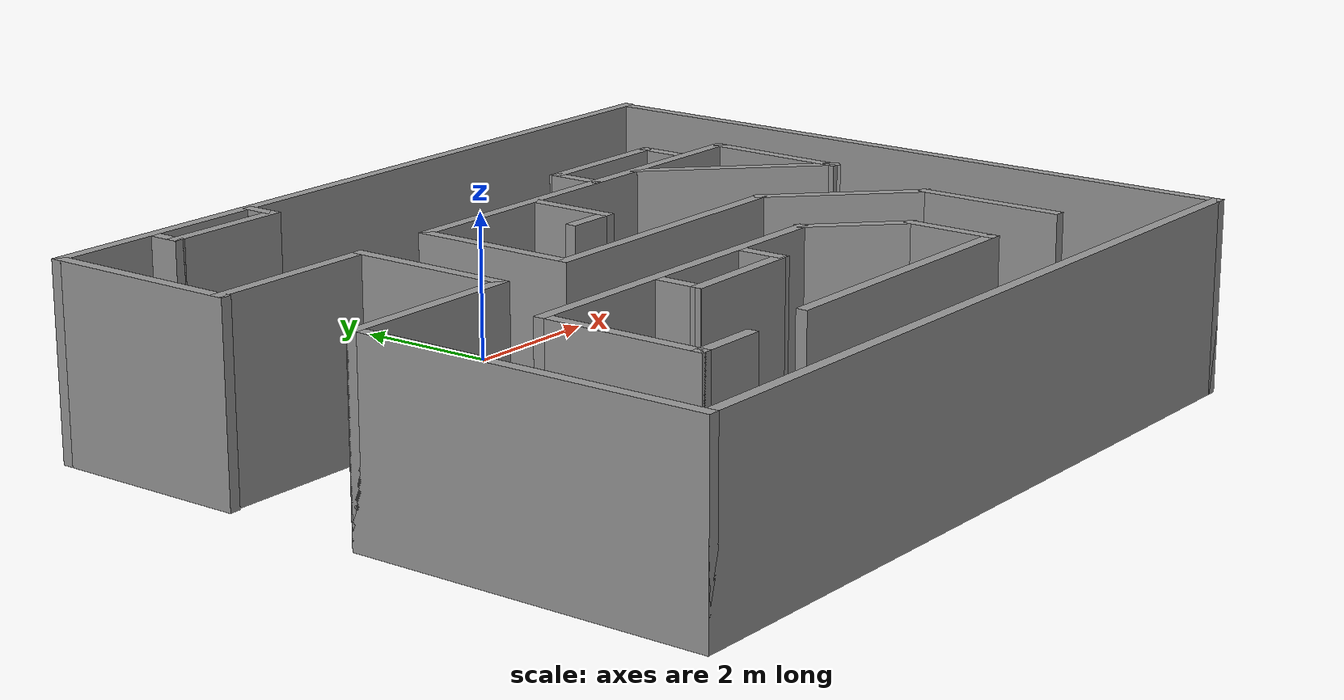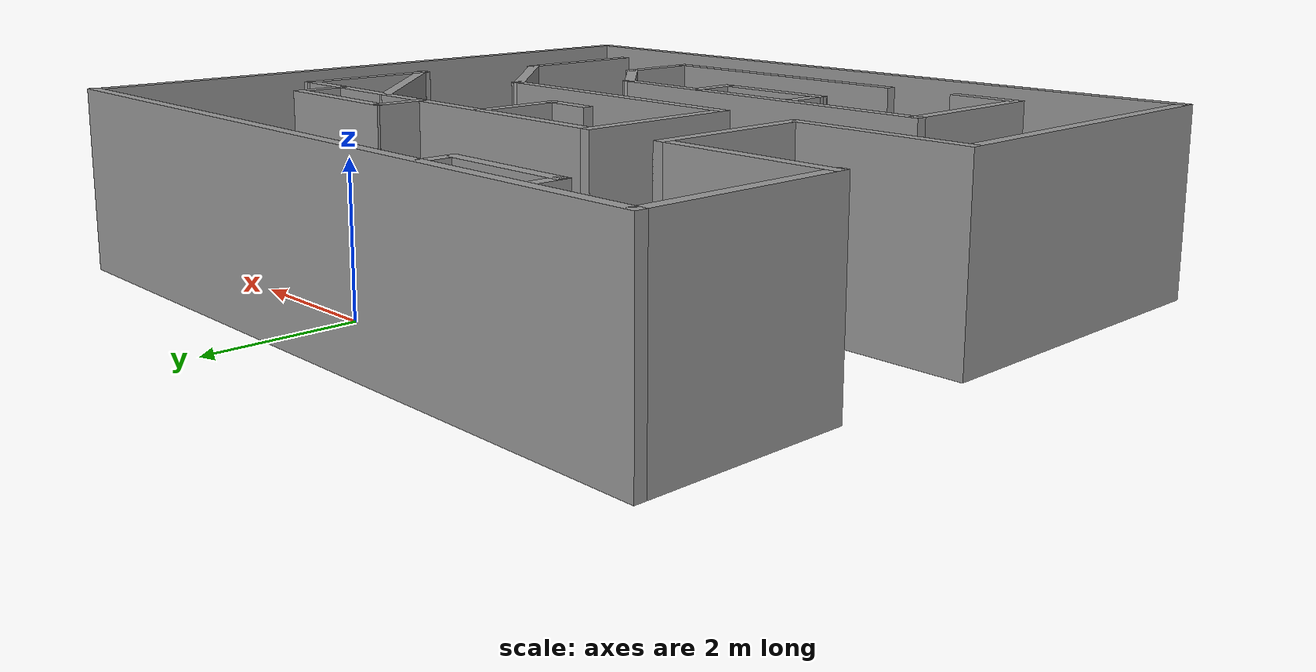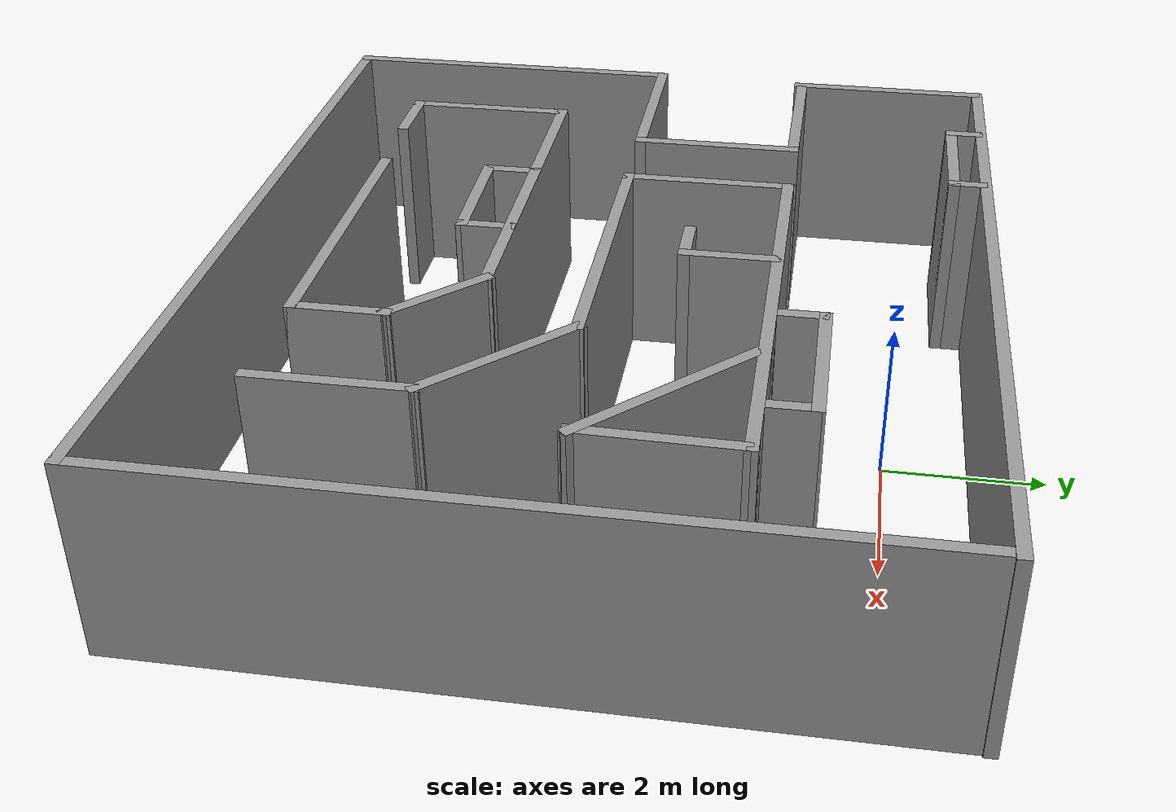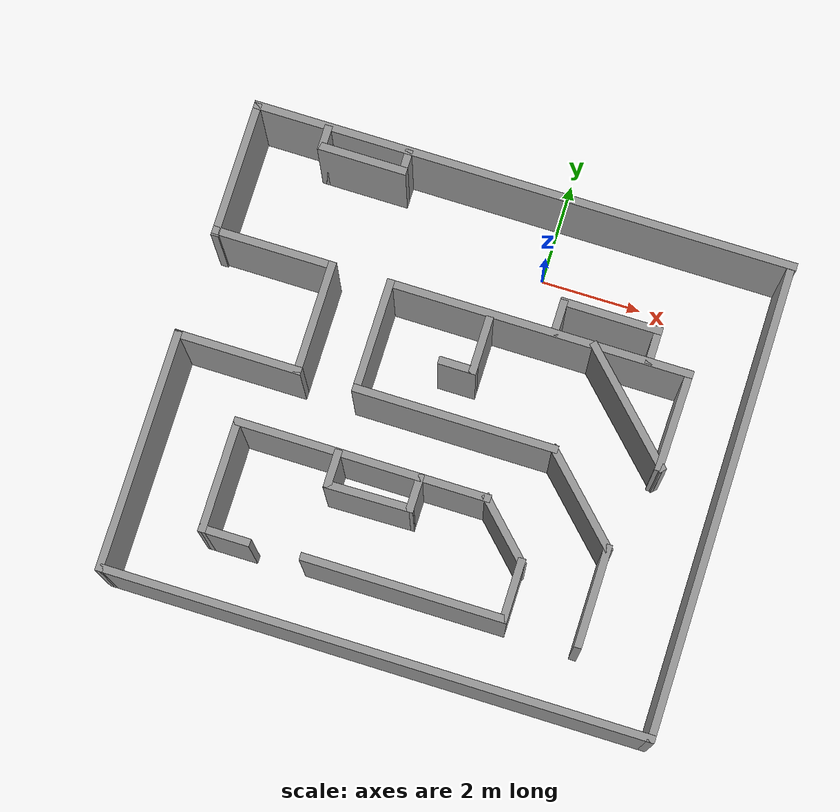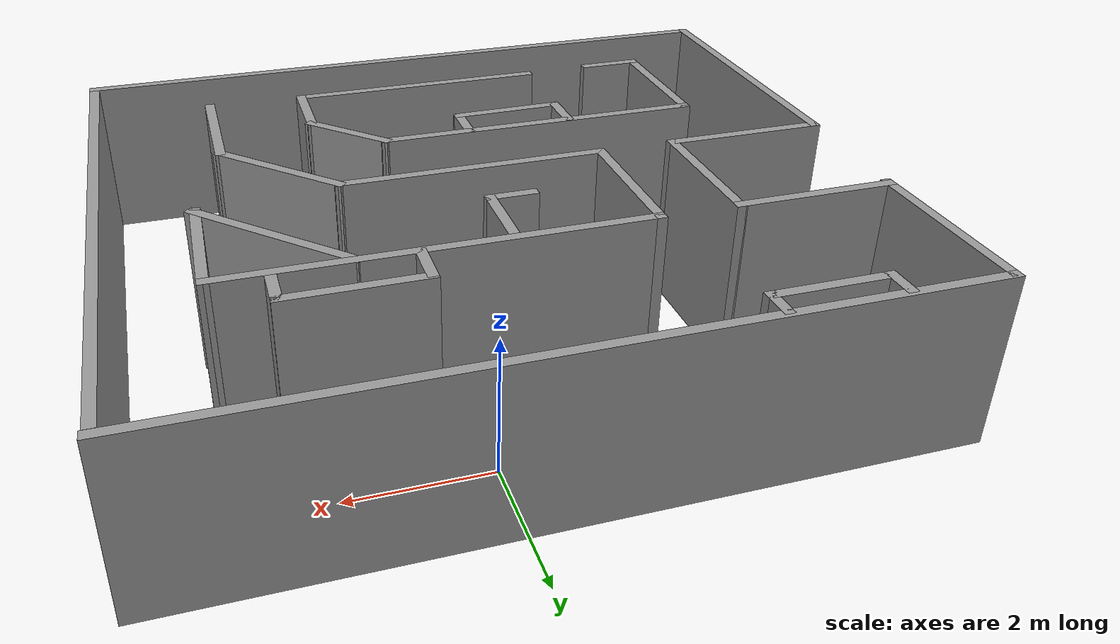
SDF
<?xml version='1.0'?>
<sdf version='1.6'>
  <model name='ex2_building'>
    <pose frame=''>-0.815142 -3.50772 0 0 -0 0</pose>
    <link name='Wall_0'>
      <collision name='Wall_0_Collision'>
        <geometry>
          <box>
            <size>6 0.15 2.5</size>
          </box>
        </geometry>
        <pose frame=''>0 0 1.25 0 -0 0</pose>
      </collision>
      <visual name='Wall_0_Visual'>
        <pose frame=''>0 0 1.25 0 -0 0</pose>
        <geometry>
          <box>
            <size>6 0.15 2.5</size>
          </box>
        </geometry>
        <material>
          <script>
            <uri>file://media/materials/scripts/gazebo.material</uri>
            <name>Gazebo/Grey</name>
          </script>
          <ambient>1 1 1 1</ambient>
        </material>
        <meta>
          <layer>0</layer>
        </meta>
      </visual>
      <pose frame=''>1.11169 2.0739 0 0 -0 0</pose>
    </link>
    <link name='Wall_10'>
      <collision name='Wall_10_Collision'>
        <geometry>
          <box>
            <size>2.7022 0.15 2.5</size>
          </box>
        </geometry>
        <pose frame=''>0 0 1.25 0 -0 0</pose>
      </collision>
      <visual name='Wall_10_Visual'>
        <pose frame=''>0 0 1.25 0 -0 0</pose>
        <geometry>
          <box>
            <size>2.7022 0.15 2.5</size>
          </box>
        </geometry>
        <material>
          <script>
            <uri>file://media/materials/scripts/gazebo.material</uri>
            <name>Gazebo/Grey</name>
          </script>
          <ambient>1 1 1 1</ambient>
        </material>
        <meta>
          <layer>0</layer>
        </meta>
      </visual>
      <pose frame=''>-5.24296 3.31482 0 0 0 -1.5708</pose>
    </link>
    <link name='Wall_11'>
      <collision name='Wall_11_Collision'>
        <geometry>
          <box>
            <size>2.42964 0.15 2.5</size>
          </box>
        </geometry>
        <pose frame=''>0 0 1.25 0 -0 0</pose>
      </collision>
      <visual name='Wall_11_Visual'>
        <pose frame=''>0 0 1.25 0 -0 0</pose>
        <geometry>
          <box>
            <size>2.42964 0.15 2.5</size>
          </box>
        </geometry>
        <material>
          <script>
            <uri>file://media/materials/scripts/gazebo.material</uri>
            <name>Gazebo/Grey</name>
          </script>
          <ambient>1 1 1 1</ambient>
        </material>
        <meta>
          <layer>0</layer>
        </meta>
      </visual>
      <pose frame=''>-4.10314 2.0739 0 0 -0 0</pose>
    </link>
    <link name='Wall_12'>
      <collision name='Wall_12_Collision'>
        <geometry>
          <box>
            <size>2.25 0.15 2.5</size>
          </box>
        </geometry>
        <pose frame=''>0 0 1.25 0 -0 0</pose>
      </collision>
      <visual name='Wall_12_Visual'>
        <pose frame=''>0 0 1.25 0 -0 0</pose>
        <geometry>
          <box>
            <size>2.25 0.15 2.5</size>
          </box>
        </geometry>
        <material>
          <script>
            <uri>file://media/materials/scripts/gazebo.material</uri>
            <name>Gazebo/Grey</name>
          </script>
          <ambient>1 1 1 1</ambient>
        </material>
        <meta>
          <layer>0</layer>
        </meta>
      </visual>
      <pose frame=''>-2.96332 1.0239 0 0 0 -1.5708</pose>
    </link>
    <link name='Wall_13'>
      <collision name='Wall_13_Collision'>
        <geometry>
          <box>
            <size>2.5 0.15 2.5</size>
          </box>
        </geometry>
        <pose frame=''>0 0 1.25 0 -0 0</pose>
      </collision>
      <visual name='Wall_13_Visual'>
        <pose frame=''>0 0 1.25 0 -0 0</pose>
        <geometry>
          <box>
            <size>2.5 0.15 2.5</size>
          </box>
        </geometry>
        <material>
          <script>
            <uri>file://media/materials/scripts/gazebo.material</uri>
            <name>Gazebo/Grey</name>
          </script>
          <ambient>1 1 1 1</ambient>
        </material>
        <meta>
          <layer>0</layer>
        </meta>
      </visual>
      <pose frame=''>-4.13831 -0.026102 0 0 -0 3.14159</pose>
    </link>
    <link name='Wall_15'>
      <collision name='Wall_15_Collision'>
        <geometry>
          <box>
            <size>4.75 0.15 2.5</size>
          </box>
        </geometry>
        <pose frame=''>0 0 1.25 0 -0 0</pose>
      </collision>
      <visual name='Wall_15_Visual'>
        <pose frame=''>0 0 1.25 0 -0 0</pose>
        <geometry>
          <box>
            <size>4.75 0.15 2.5</size>
          </box>
        </geometry>
        <material>
          <script>
            <uri>file://media/materials/scripts/gazebo.material</uri>
            <name>Gazebo/Grey</name>
          </script>
          <ambient>1 1 1 1</ambient>
        </material>
        <meta>
          <layer>0</layer>
        </meta>
      </visual>
      <pose frame=''>-5.31332 -2.3261 0 0 0 -1.5708</pose>
    </link>
    <link name='Wall_16'>
      <collision name='Wall_16_Collision'>
        <geometry>
          <box>
            <size>10.75 0.15 2.5</size>
          </box>
        </geometry>
        <pose frame=''>0 0 1.25 0 -0 0</pose>
      </collision>
      <visual name='Wall_16_Visual'>
        <pose frame=''>0 0 1.25 0 -0 0</pose>
        <geometry>
          <box>
            <size>10.75 0.15 2.5</size>
          </box>
        </geometry>
        <material>
          <script>
            <uri>file://media/materials/scripts/gazebo.material</uri>
            <name>Gazebo/Grey</name>
          </script>
          <ambient>1 1 1 1</ambient>
        </material>
        <meta>
          <layer>0</layer>
        </meta>
      </visual>
      <pose frame=''>-0.013315 -4.6261 0 0 -0 0</pose>
    </link>
    <link name='Wall_17'>
      <collision name='Wall_17_Collision'>
        <geometry>
          <box>
            <size>9.25 0.15 2.5</size>
          </box>
        </geometry>
        <pose frame=''>0 0 1.25 0 -0 0</pose>
      </collision>
      <visual name='Wall_17_Visual'>
        <pose frame=''>0 0 1.25 0 -0 0</pose>
        <geometry>
          <box>
            <size>9.25 0.15 2.5</size>
          </box>
        </geometry>
        <material>
          <script>
            <uri>file://media/materials/scripts/gazebo.material</uri>
            <name>Gazebo/Grey</name>
          </script>
          <ambient>1 1 1 1</ambient>
        </material>
        <meta>
          <layer>0</layer>
        </meta>
      </visual>
      <pose frame=''>5.28669 -0.076102 0 0 -0 1.5708</pose>
    </link>
    <link name='Wall_19'>
      <collision name='Wall_19_Collision'>
        <geometry>
          <box>
            <size>2.00033 0.15 2.5</size>
          </box>
        </geometry>
        <pose frame=''>0 0 1.25 0 -0 0</pose>
      </collision>
      <visual name='Wall_19_Visual'>
        <pose frame=''>0 0 1.25 0 -0 0</pose>
        <geometry>
          <box>
            <size>2.00033 0.15 2.5</size>
          </box>
        </geometry>
        <material>
          <script>
            <uri>file://media/materials/scripts/gazebo.material</uri>
            <name>Gazebo/Grey</name>
          </script>
          <ambient>1 1 1 1</ambient>
        </material>
        <meta>
          <layer>0</layer>
        </meta>
      </visual>
      <pose frame=''>4.0191 1.1489 0 0 0 -1.58981</pose>
    </link>
    <link name='Wall_20'>
      <collision name='Wall_20_Collision'>
        <geometry>
          <box>
            <size>2.75 0.15 2.5</size>
          </box>
        </geometry>
        <pose frame=''>0 0 1.25 0 -0 0</pose>
      </collision>
      <visual name='Wall_20_Visual'>
        <pose frame=''>0 0 1.25 0 -0 0</pose>
        <geometry>
          <box>
            <size>2.75 0.15 2.5</size>
          </box>
        </geometry>
        <material>
          <script>
            <uri>file://media/materials/scripts/gazebo.material</uri>
            <name>Gazebo/Grey</name>
          </script>
          <ambient>1 1 1 1</ambient>
        </material>
        <meta>
          <layer>0</layer>
        </meta>
      </visual>
      <pose frame=''>3.11745 1.14314 0 0 -0 2.35619</pose>
    </link>
    <link name='Wall_22'>
      <collision name='Wall_22_Collision'>
        <geometry>
          <box>
            <size>2.25 0.15 2.5</size>
          </box>
        </geometry>
        <pose frame=''>0 0 1.25 0 -0 0</pose>
      </collision>
      <visual name='Wall_22_Visual'>
        <pose frame=''>0 0 1.25 0 -0 0</pose>
        <geometry>
          <box>
            <size>2.25 0.15 2.5</size>
          </box>
        </geometry>
        <material>
          <script>
            <uri>file://media/materials/scripts/gazebo.material</uri>
            <name>Gazebo/Grey</name>
          </script>
          <ambient>1 1 1 1</ambient>
        </material>
        <meta>
          <layer>0</layer>
        </meta>
      </visual>
      <pose frame=''>-3.73355 -2.32545 0 0 0 -1.5708</pose>
    </link>
    <link name='Wall_23'>
      <collision name='Wall_23_Collision'>
        <geometry>
          <box>
            <size>1 0.15 2.5</size>
          </box>
        </geometry>
        <pose frame=''>0 0 1.25 0 -0 0</pose>
      </collision>
      <visual name='Wall_23_Visual'>
        <pose frame=''>0 0 1.25 0 -0 0</pose>
        <geometry>
          <box>
            <size>1 0.15 2.5</size>
          </box>
        </geometry>
        <material>
          <script>
            <uri>file://media/materials/scripts/gazebo.material</uri>
            <name>Gazebo/Grey</name>
          </script>
          <ambient>1 1 1 1</ambient>
        </material>
        <meta>
          <layer>0</layer>
        </meta>
      </visual>
      <pose frame=''>-3.30855 -3.37545 0 0 -0 0</pose>
    </link>
    <link name='Wall_25'>
      <collision name='Wall_25_Collision'>
        <geometry>
          <box>
            <size>5 0.15 2.5</size>
          </box>
        </geometry>
        <pose frame=''>0 0 1.25 0 -0 0</pose>
      </collision>
      <visual name='Wall_25_Visual'>
        <pose frame=''>0 0 1.25 0 -0 0</pose>
        <geometry>
          <box>
            <size>5 0.15 2.5</size>
          </box>
        </geometry>
        <material>
          <script>
            <uri>file://media/materials/scripts/gazebo.material</uri>
            <name>Gazebo/Grey</name>
          </script>
          <ambient>1 1 1 1</ambient>
        </material>
        <meta>
          <layer>0</layer>
        </meta>
      </visual>
      <pose frame=''>-1.30855 -1.27544 0 0 -0 0</pose>
    </link>
    <link name='Wall_26'>
      <collision name='Wall_26_Collision'>
        <geometry>
          <box>
            <size>1.5 0.15 2.5</size>
          </box>
        </geometry>
        <pose frame=''>0 0 1.25 0 -0 0</pose>
      </collision>
      <visual name='Wall_26_Visual'>
        <pose frame=''>0 0 1.25 0 -0 0</pose>
        <geometry>
          <box>
            <size>1.5 0.15 2.5</size>
          </box>
        </geometry>
        <material>
          <script>
            <uri>file://media/materials/scripts/gazebo.material</uri>
            <name>Gazebo/Grey</name>
          </script>
          <ambient>1 1 1 1</ambient>
        </material>
        <meta>
          <layer>0</layer>
        </meta>
      </visual>
      <pose frame=''>1.59375 -1.75274 0 0 0 -0.785398</pose>
    </link>
    <link name='Wall_27'>
      <collision name='Wall_27_Collision'>
        <geometry>
          <box>
            <size>1.25 0.15 2.5</size>
          </box>
        </geometry>
        <pose frame=''>0 0 1.25 0 -0 0</pose>
      </collision>
      <visual name='Wall_27_Visual'>
        <pose frame=''>0 0 1.25 0 -0 0</pose>
        <geometry>
          <box>
            <size>1.25 0.15 2.5</size>
          </box>
        </geometry>
        <material>
          <script>
            <uri>file://media/materials/scripts/gazebo.material</uri>
            <name>Gazebo/Grey</name>
          </script>
          <ambient>1 1 1 1</ambient>
        </material>
        <meta>
          <layer>0</layer>
        </meta>
      </visual>
      <pose frame=''>2.07105 -2.78004 0 0 0 -1.5708</pose>
    </link>
    <link name='Wall_28'>
      <collision name='Wall_28_Collision'>
        <geometry>
          <box>
            <size>4 0.15 2.5</size>
          </box>
        </geometry>
        <pose frame=''>0 0 1.25 0 -0 0</pose>
      </collision>
      <visual name='Wall_28_Visual'>
        <pose frame=''>0 0 1.25 0 -0 0</pose>
        <geometry>
          <box>
            <size>4 0.15 2.5</size>
          </box>
        </geometry>
        <material>
          <script>
            <uri>file://media/materials/scripts/gazebo.material</uri>
            <name>Gazebo/Grey</name>
          </script>
          <ambient>1 1 1 1</ambient>
        </material>
        <meta>
          <layer>0</layer>
        </meta>
      </visual>
      <pose frame=''>0.146047 -3.33004 0 0 -0 3.14159</pose>
    </link>
    <link name='Wall_3'>
      <collision name='Wall_3_Collision'>
        <geometry>
          <box>
            <size>2.25 0.15 2.5</size>
          </box>
        </geometry>
        <pose frame=''>0 0 1.25 0 -0 0</pose>
      </collision>
      <visual name='Wall_3_Visual'>
        <pose frame=''>0 0 1.25 0 -0 0</pose>
        <geometry>
          <box>
            <size>2.25 0.15 2.5</size>
          </box>
        </geometry>
        <material>
          <script>
            <uri>file://media/materials/scripts/gazebo.material</uri>
            <name>Gazebo/Grey</name>
          </script>
          <ambient>1 1 1 1</ambient>
        </material>
        <meta>
          <layer>0</layer>
        </meta>
      </visual>
      <pose frame=''>-1.81332 1.0239 0 0 0 -1.5708</pose>
    </link>
    <link name='Wall_34'>
      <collision name='Wall_34_Collision'>
        <geometry>
          <box>
            <size>0.711073 0.15 2.5</size>
          </box>
        </geometry>
        <pose frame=''>0 0 1.25 0 -0 0</pose>
      </collision>
      <visual name='Wall_34_Visual'>
        <pose frame=''>0 0 1.25 0 -0 0</pose>
        <geometry>
          <box>
            <size>0.711073 0.15 2.5</size>
          </box>
        </geometry>
        <material>
          <script>
            <uri>file://media/materials/scripts/gazebo.material</uri>
            <name>Gazebo/Grey</name>
          </script>
          <ambient>1 1 1 1</ambient>
        </material>
        <meta>
          <layer>0</layer>
        </meta>
      </visual>
      <pose frame=''>1.40255 2.38225 0 0 -0 1.5708</pose>
    </link>
    <link name='Wall_35'>
      <collision name='Wall_35_Collision'>
        <geometry>
          <box>
            <size>2 0.15 2.5</size>
          </box>
        </geometry>
        <pose frame=''>0 0 1.25 0 -0 0</pose>
      </collision>
      <visual name='Wall_35_Visual'>
        <pose frame=''>0 0 1.25 0 -0 0</pose>
        <geometry>
          <box>
            <size>2 0.15 2.5</size>
          </box>
        </geometry>
        <material>
          <script>
            <uri>file://media/materials/scripts/gazebo.material</uri>
            <name>Gazebo/Grey</name>
          </script>
          <ambient>1 1 1 1</ambient>
        </material>
        <meta>
          <layer>0</layer>
        </meta>
      </visual>
      <pose frame=''>2.32755 2.69797 0 0 -0 0</pose>
    </link>
    <link name='Wall_36'>
      <collision name='Wall_36_Collision'>
        <geometry>
          <box>
            <size>0.711073 0.15 2.5</size>
          </box>
        </geometry>
        <pose frame=''>0 0 1.25 0 -0 0</pose>
      </collision>
      <visual name='Wall_36_Visual'>
        <pose frame=''>0 0 1.25 0 -0 0</pose>
        <geometry>
          <box>
            <size>0.711073 0.15 2.5</size>
          </box>
        </geometry>
        <material>
          <script>
            <uri>file://media/materials/scripts/gazebo.material</uri>
            <name>Gazebo/Grey</name>
          </script>
          <ambient>1 1 1 1</ambient>
        </material>
        <meta>
          <layer>0</layer>
        </meta>
      </visual>
      <pose frame=''>3.25255 2.38225 0 0 0 -1.5708</pose>
    </link>
    <link name='Wall_38'>
      <collision name='Wall_38_Collision'>
        <geometry>
          <box>
            <size>0.5 0.15 2.5</size>
          </box>
        </geometry>
        <pose frame=''>0 0 1.25 0 -0 0</pose>
      </collision>
      <visual name='Wall_38_Visual'>
        <pose frame=''>0 0 1.25 0 -0 0</pose>
        <geometry>
          <box>
            <size>0.5 0.15 2.5</size>
          </box>
        </geometry>
        <material>
          <script>
            <uri>file://media/materials/scripts/gazebo.material</uri>
            <name>Gazebo/Grey</name>
          </script>
          <ambient>1 1 1 1</ambient>
        </material>
        <meta>
          <layer>0</layer>
        </meta>
      </visual>
      <pose frame=''>-3.83602 4.39534 0 0 0 -1.5708</pose>
    </link>
    <link name='Wall_39'>
      <collision name='Wall_39_Collision'>
        <geometry>
          <box>
            <size>1.75 0.15 2.5</size>
          </box>
        </geometry>
        <pose frame=''>0 0 1.25 0 -0 0</pose>
      </collision>
      <visual name='Wall_39_Visual'>
        <pose frame=''>0 0 1.25 0 -0 0</pose>
        <geometry>
          <box>
            <size>1.75 0.15 2.5</size>
          </box>
        </geometry>
        <material>
          <script>
            <uri>file://media/materials/scripts/gazebo.material</uri>
            <name>Gazebo/Grey</name>
          </script>
          <ambient>1 1 1 1</ambient>
        </material>
        <meta>
          <layer>0</layer>
        </meta>
      </visual>
      <pose frame=''>-3.03601 4.22034 0 0 -0 0</pose>
    </link>
    <link name='Wall_4'>
      <collision name='Wall_4_Collision'>
        <geometry>
          <box>
            <size>4 0.15 2.5</size>
          </box>
        </geometry>
        <pose frame=''>0 0 1.25 0 -0 0</pose>
      </collision>
      <visual name='Wall_4_Visual'>
        <pose frame=''>0 0 1.25 0 -0 0</pose>
        <geometry>
          <box>
            <size>4 0.15 2.5</size>
          </box>
        </geometry>
        <material>
          <script>
            <uri>file://media/materials/scripts/gazebo.material</uri>
            <name>Gazebo/Grey</name>
          </script>
          <ambient>1 1 1 1</ambient>
        </material>
        <meta>
          <layer>0</layer>
        </meta>
      </visual>
      <pose frame=''>0.111685 -0.026102 0 0 -0 0</pose>
    </link>
    <link name='Wall_40'>
      <collision name='Wall_40_Collision'>
        <geometry>
          <box>
            <size>0.5 0.15 2.5</size>
          </box>
        </geometry>
        <pose frame=''>0 0 1.25 0 -0 0</pose>
      </collision>
      <visual name='Wall_40_Visual'>
        <pose frame=''>0 0 1.25 0 -0 0</pose>
        <geometry>
          <box>
            <size>0.5 0.15 2.5</size>
          </box>
        </geometry>
        <material>
          <script>
            <uri>file://media/materials/scripts/gazebo.material</uri>
            <name>Gazebo/Grey</name>
          </script>
          <ambient>1 1 1 1</ambient>
        </material>
        <meta>
          <layer>0</layer>
        </meta>
      </visual>
      <pose frame=''>-2.23602 4.39534 0 0 -0 1.5708</pose>
    </link>
    <link name='Wall_42'>
      <collision name='Wall_42_Collision'>
        <geometry>
          <box>
            <size>1.25 0.15 2.5</size>
          </box>
        </geometry>
        <pose frame=''>0 0 1.25 0 -0 0</pose>
      </collision>
      <visual name='Wall_42_Visual'>
        <pose frame=''>0 0 1.25 0 -0 0</pose>
        <geometry>
          <box>
            <size>1.25 0.15 2.5</size>
          </box>
        </geometry>
        <material>
          <script>
            <uri>file://media/materials/scripts/gazebo.material</uri>
            <name>Gazebo/Grey</name>
          </script>
          <ambient>1 1 1 1</ambient>
        </material>
        <meta>
          <layer>0</layer>
        </meta>
      </visual>
      <pose frame=''>0.16155 1.49567 0 0 0 -1.5708</pose>
    </link>
    <link name='Wall_43'>
      <collision name='Wall_43_Collision'>
        <geometry>
          <box>
            <size>0.75 0.15 2.5</size>
          </box>
        </geometry>
        <pose frame=''>0 0 1.25 0 -0 0</pose>
      </collision>
      <visual name='Wall_43_Visual'>
        <pose frame=''>0 0 1.25 0 -0 0</pose>
        <geometry>
          <box>
            <size>0.75 0.15 2.5</size>
          </box>
        </geometry>
        <material>
          <script>
            <uri>file://media/materials/scripts/gazebo.material</uri>
            <name>Gazebo/Grey</name>
          </script>
          <ambient>1 1 1 1</ambient>
        </material>
        <meta>
          <layer>0</layer>
        </meta>
      </visual>
      <pose frame=''>-0.13845 0.94567 0 0 -0 3.14159</pose>
    </link>
    <link name='Wall_45'>
      <collision name='Wall_45_Collision'>
        <geometry>
          <box>
            <size>0.75 0.15 2.5</size>
          </box>
        </geometry>
        <pose frame=''>0 0 1.25 0 -0 0</pose>
      </collision>
      <visual name='Wall_45_Visual'>
        <pose frame=''>0 0 1.25 0 -0 0</pose>
        <geometry>
          <box>
            <size>0.75 0.15 2.5</size>
          </box>
        </geometry>
        <material>
          <script>
            <uri>file://media/materials/scripts/gazebo.material</uri>
            <name>Gazebo/Grey</name>
          </script>
          <ambient>1 1 1 1</ambient>
        </material>
        <meta>
          <layer>0</layer>
        </meta>
      </visual>
      <pose frame=''>-0.181764 -1.58272 0 0 0 -1.5708</pose>
    </link>
    <link name='Wall_46'>
      <collision name='Wall_46_Collision'>
        <geometry>
          <box>
            <size>1.73995 0.15 2.5</size>
          </box>
        </geometry>
        <pose frame=''>0 0 1.25 0 -0 0</pose>
      </collision>
      <visual name='Wall_46_Visual'>
        <pose frame=''>0 0 1.25 0 -0 0</pose>
        <geometry>
          <box>
            <size>1.73995 0.15 2.5</size>
          </box>
        </geometry>
        <material>
          <script>
            <uri>file://media/materials/scripts/gazebo.material</uri>
            <name>Gazebo/Grey</name>
          </script>
          <ambient>1 1 1 1</ambient>
        </material>
        <meta>
          <layer>0</layer>
        </meta>
      </visual>
      <pose frame=''>-0.976736 -1.89532 0 0 0 -3.12574</pose>
    </link>
    <link name='Wall_47'>
      <collision name='Wall_47_Collision'>
        <geometry>
          <box>
            <size>0.75 0.15 2.5</size>
          </box>
        </geometry>
        <pose frame=''>0 0 1.25 0 -0 0</pose>
      </collision>
      <visual name='Wall_47_Visual'>
        <pose frame=''>0 0 1.25 0 -0 0</pose>
        <geometry>
          <box>
            <size>0.75 0.15 2.5</size>
          </box>
        </geometry>
        <material>
          <script>
            <uri>file://media/materials/scripts/gazebo.material</uri>
            <name>Gazebo/Grey</name>
          </script>
          <ambient>1 1 1 1</ambient>
        </material>
        <meta>
          <layer>0</layer>
        </meta>
      </visual>
      <pose frame=''>-1.77171 -1.59787 0 0 -0 1.5708</pose>
    </link>
    <link name='Wall_5'>
      <collision name='Wall_5_Collision'>
        <geometry>
          <box>
            <size>2.25 0.15 2.5</size>
          </box>
        </geometry>
        <pose frame=''>0 0 1.25 0 -0 0</pose>
      </collision>
      <visual name='Wall_5_Visual'>
        <pose frame=''>0 0 1.25 0 -0 0</pose>
        <geometry>
          <box>
            <size>2.25 0.15 2.5</size>
          </box>
        </geometry>
        <material>
          <script>
            <uri>file://media/materials/scripts/gazebo.material</uri>
            <name>Gazebo/Grey</name>
          </script>
          <ambient>1 1 1 1</ambient>
        </material>
        <meta>
          <layer>0</layer>
        </meta>
      </visual>
      <pose frame=''>2.77915 -0.768564 0 0 0 -0.785398</pose>
    </link>
    <link name='Wall_6'>
      <collision name='Wall_6_Collision'>
        <geometry>
          <box>
            <size>2 0.15 2.5</size>
          </box>
        </geometry>
        <pose frame=''>0 0 1.25 0 -0 0</pose>
      </collision>
      <visual name='Wall_6_Visual'>
        <pose frame=''>0 0 1.25 0 -0 0</pose>
        <geometry>
          <box>
            <size>2 0.15 2.5</size>
          </box>
        </geometry>
        <material>
          <script>
            <uri>file://media/materials/scripts/gazebo.material</uri>
            <name>Gazebo/Grey</name>
          </script>
          <ambient>1 1 1 1</ambient>
        </material>
        <meta>
          <layer>0</layer>
        </meta>
      </visual>
      <pose frame=''>3.52161 -2.43603 0 0 0 -1.5708</pose>
    </link>
    <link name='Wall_9'>
      <collision name='Wall_9_Collision'>
        <geometry>
          <box>
            <size>10.7063 0.15 2.5</size>
          </box>
        </geometry>
        <pose frame=''>0 0 1.25 0 -0 0</pose>
      </collision>
      <visual name='Wall_9_Visual'>
        <pose frame=''>0 0 1.25 0 -0 0</pose>
        <geometry>
          <box>
            <size>10.7063 0.15 2.5</size>
          </box>
        </geometry>
        <material>
          <script>
            <uri>file://media/materials/scripts/gazebo.material</uri>
            <name>Gazebo/Grey</name>
          </script>
          <ambient>1 1 1 1</ambient>
        </material>
        <meta>
          <layer>0</layer>
        </meta>
      </visual>
      <pose frame=''>0.035164 4.6261 0 0 -0 3.14159</pose>
    </link>
    <static>1</static>
  </model>
</sdf>
